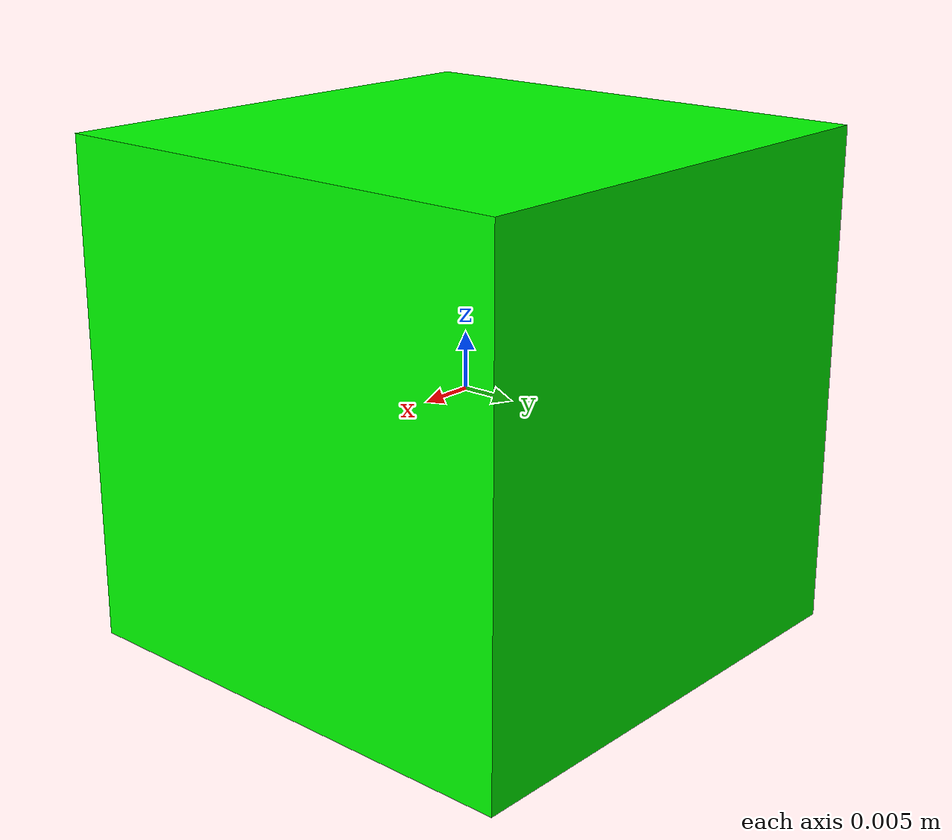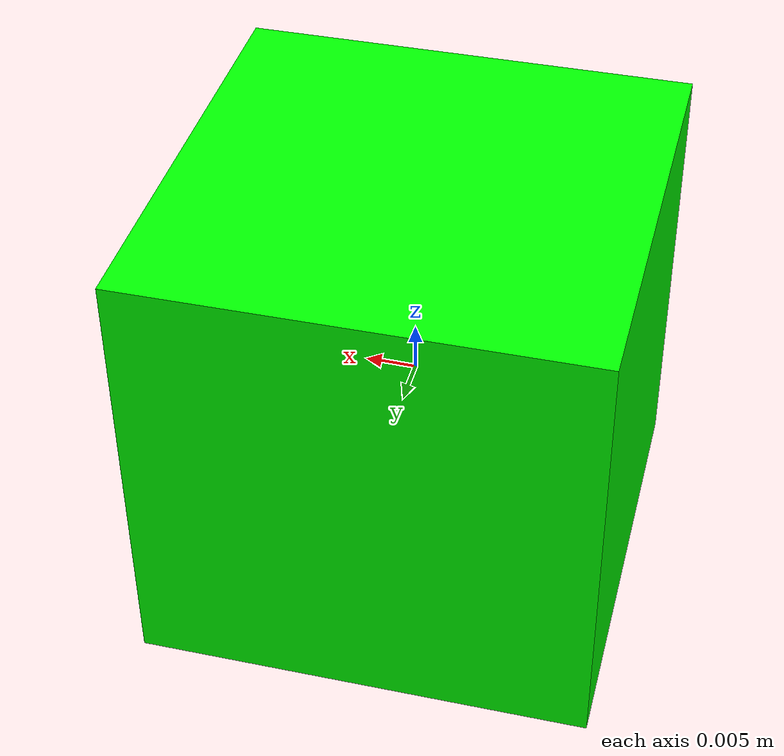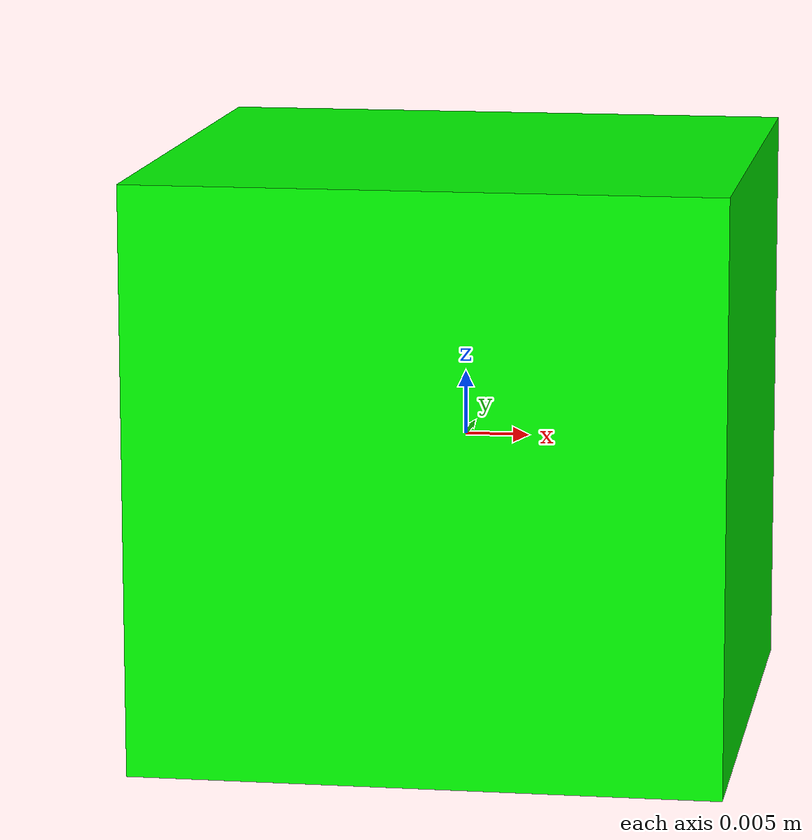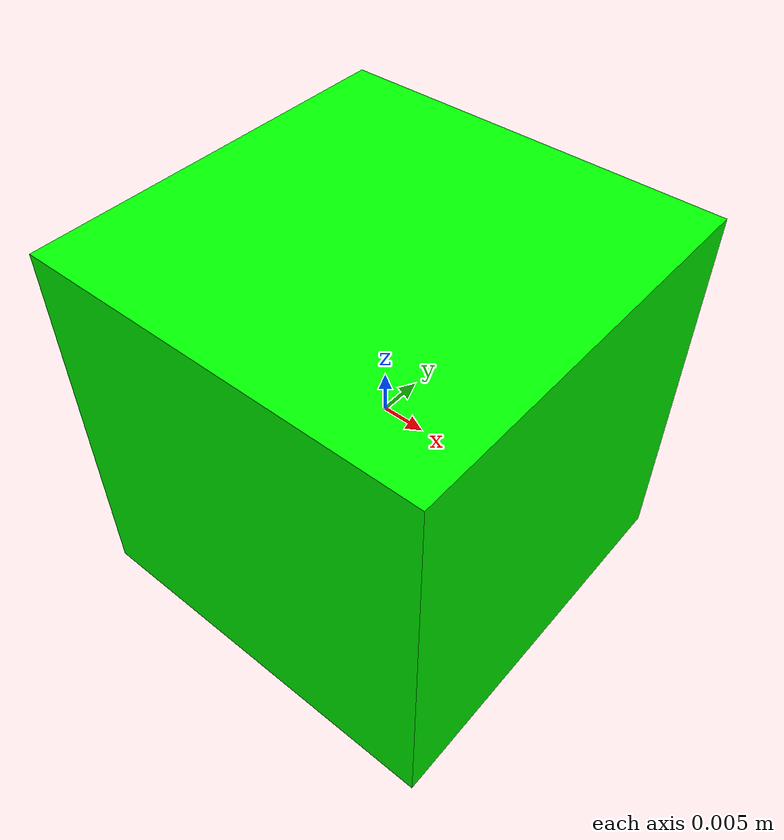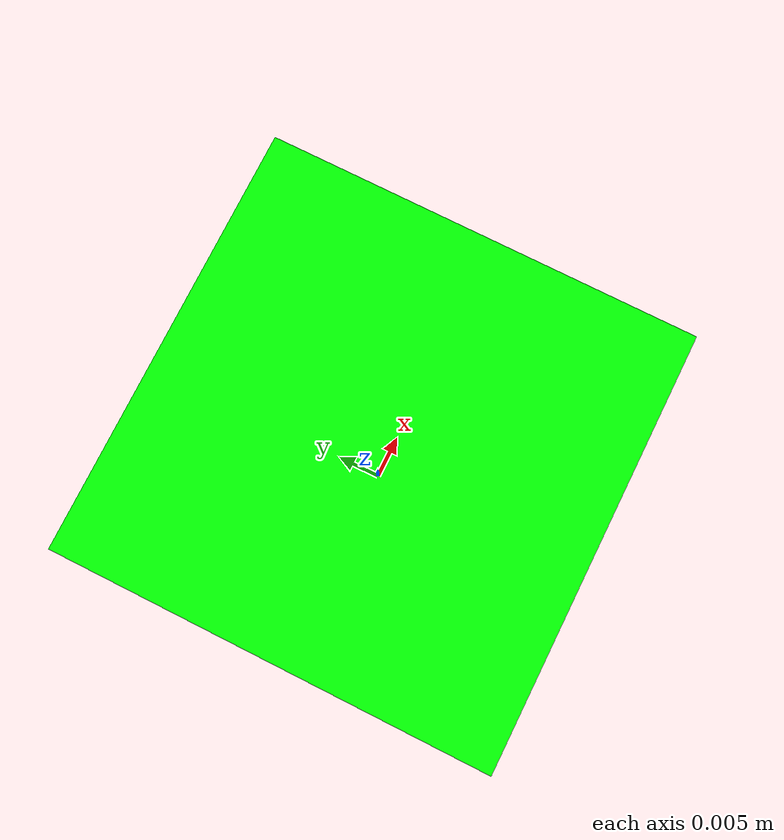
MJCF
<mujoco model="green_cube">
  <!-- Sim2real toy block: green cube (target), 0.045 m side (Isaac blocksuite parity).
       Contact options are inherited from the scene it is attached to. -->
  <worldbody>
    <body name="green_cube_body">
      <geom type="box" size="0.0225 0.0225 0.0225" rgba="0 1 0 1" name="green_cube_geom"
            friction="1 0.3 0.1" density="50" group="1"/>
      <joint type="free" name="green_cube_joint"/>
    </body>
  </worldbody>
</mujoco>
